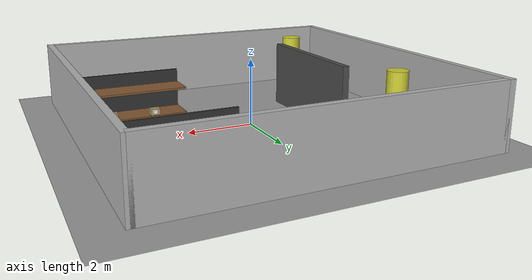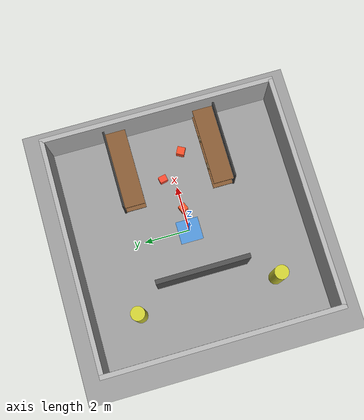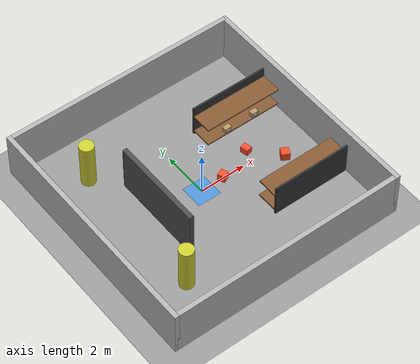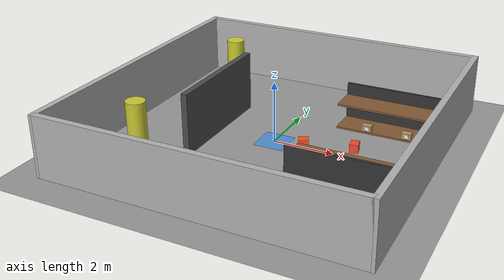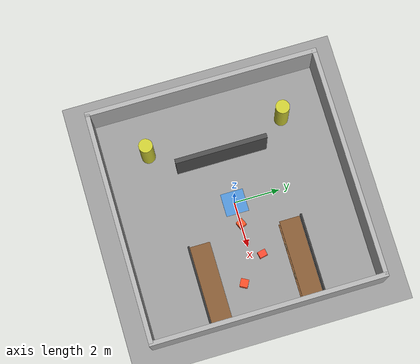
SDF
<?xml version="1.0" ?>
<sdf version="1.8">
  <world name="smart_warehouse">
    <physics name="4ms" type="ignored">
      <max_step_size>0.004</max_step_size>
      <real_time_factor>1.0</real_time_factor>
    </physics>

    <plugin filename="gz-sim-physics-system" name="gz::sim::systems::Physics"/>
    <plugin filename="gz-sim-user-commands-system" name="gz::sim::systems::UserCommands"/>
    <plugin filename="gz-sim-scene-broadcaster-system" name="gz::sim::systems::SceneBroadcaster"/>
    <plugin filename="gz-sim-sensors-system" name="gz::sim::systems::Sensors">
      <render_engine>ogre2</render_engine>
    </plugin>
    <plugin filename="gz-sim-imu-system" name="gz::sim::systems::Imu"/>

    <light type="directional" name="sun">
      <cast_shadows>true</cast_shadows>
      <pose>0 0 12 0 0 0</pose>
      <diffuse>0.95 0.95 0.95 1</diffuse>
      <specular>0.5 0.5 0.5 1</specular>
      <attenuation><range>1000</range><constant>0.75</constant><linear>0.003</linear><quadratic>0.0003</quadratic></attenuation>
      <direction>-0.48 0.12 -0.87</direction>
    </light>

    <model name="ground_plane">
      <static>true</static>
      <link name="link">
        <collision name="collision"><geometry><plane><normal>0 0 1</normal><size>100 100</size></plane></geometry>
          <surface><friction><ode><mu>0.9</mu><mu2>0.7</mu2></ode></friction></surface>
        </collision>
        <visual name="visual">
          <geometry><plane><normal>0 0 1</normal><size>100 100</size></plane></geometry>
          <material>
            <ambient>0.6 0.6 0.6 1</ambient><diffuse>0.6 0.6 0.6 1</diffuse><specular>0.2 0.2 0.2 1</specular>
            <pbr><metal><roughness>0.8</roughness><metallic>0.1</metallic></metal></pbr>
          </material>
        </visual>
      </link>
    </model>

    <model name='wall_north'><static>true</static><pose>0 5 1 0 0 0</pose><link name='link'><collision name='collision'><geometry><box><size>10 0.2 2</size></box></geometry></collision><visual name='visual'><geometry><box><size>10 0.2 2</size></box></geometry><material><ambient>0.7 0.7 0.7 1</ambient><diffuse>0.7 0.7 0.7 1</diffuse></material></visual></link></model>
    <model name='wall_south'><static>true</static><pose>0 -5 1 0 0 0</pose><link name='link'><collision name='collision'><geometry><box><size>10 0.2 2</size></box></geometry></collision><visual name='visual'><geometry><box><size>10 0.2 2</size></box></geometry><material><ambient>0.7 0.7 0.7 1</ambient><diffuse>0.7 0.7 0.7 1</diffuse></material></visual></link></model>
    <model name='wall_east'><static>true</static><pose>5 0 1 0 0 0</pose><link name='link'><collision name='collision'><geometry><box><size>0.2 10.2 2</size></box></geometry></collision><visual name='visual'><geometry><box><size>0.2 10.2 2</size></box></geometry><material><ambient>0.7 0.7 0.7 1</ambient><diffuse>0.7 0.7 0.7 1</diffuse></material></visual></link></model>
    <model name='wall_west'><static>true</static><pose>-5 0 1 0 0 0</pose><link name='link'><collision name='collision'><geometry><box><size>0.2 10.2 2</size></box></geometry></collision><visual name='visual'><geometry><box><size>0.2 10.2 2</size></box></geometry><material><ambient>0.7 0.7 0.7 1</ambient><diffuse>0.7 0.7 0.7 1</diffuse></material></visual></link></model>

    <model name="shelf_1">
      <static>true</static><pose>3.2 2 0 0 0 0</pose>  <link name="link">
        <visual name="back"><pose>0 0.45 0.68 0 0 0</pose><geometry><box><size>3.4 0.08 1.4</size></box></geometry><material><ambient>0.2 0.2 0.2 1</ambient><diffuse>0.2 0.2 0.2 1</diffuse></material></visual>
        <collision name="back"><pose>0 0.45 0.68 0 0 0</pose><geometry><box><size>3.4 0.08 1.4</size></box></geometry></collision>
        <visual name="shelf_bottom"><pose>0 0 0.16 0 0 0</pose><geometry><box><size>3.4 0.95 0.06</size></box></geometry><material><ambient>0.52 0.35 0.2 1</ambient><diffuse>0.52 0.35 0.2 1</diffuse></material></visual>
        <collision name="shelf_bottom"><pose>0 0 0.16 0 0 0</pose><geometry><box><size>3.4 0.95 0.06</size></box></geometry></collision>
        <visual name="shelf_top"><pose>0 0 0.95 0 0 0</pose><geometry><box><size>3.4 0.95 0.06</size></box></geometry><material><ambient>0.52 0.35 0.2 1</ambient><diffuse>0.52 0.35 0.2 1</diffuse></material></visual>
        <collision name="shelf_top"><pose>0 0 0.95 0 0 0</pose><geometry><box><size>3.4 0.95 0.06</size></box></geometry></collision>
      </link>
    </model>

    <model name="shelf_2">
      <static>true</static><pose>3.2 -2 0 0 0 3.14159</pose>
      <link name="link">
        <visual name="back"><pose>0 0.45 0.68 0 0 0</pose><geometry><box><size>3.4 0.08 1.4</size></box></geometry><material><ambient>0.2 0.2 0.2 1</ambient><diffuse>0.2 0.2 0.2 1</diffuse></material></visual>
        <collision name="back"><pose>0 0.45 0.68 0 0 0</pose><geometry><box><size>3.4 0.08 1.4</size></box></geometry></collision>
        <visual name="shelf_bottom"><pose>0 0 0.16 0 0 0</pose><geometry><box><size>3.4 0.95 0.06</size></box></geometry><material><ambient>0.52 0.35 0.2 1</ambient><diffuse>0.52 0.35 0.2 1</diffuse></material></visual>
        <collision name="shelf_bottom"><pose>0 0 0.16 0 0 0</pose><geometry><box><size>3.4 0.95 0.06</size></box></geometry></collision>
        <visual name="shelf_top"><pose>0 0 0.95 0 0 0</pose><geometry><box><size>3.4 0.95 0.06</size></box></geometry><material><ambient>0.52 0.35 0.2 1</ambient><diffuse>0.52 0.35 0.2 1</diffuse></material></visual>
        <collision name="shelf_top"><pose>0 0 0.95 0 0 0</pose><geometry><box><size>3.4 0.95 0.06</size></box></geometry></collision>
      </link>
    </model>

    <model name='divider_wall'><static>true</static><pose>-2 0 1 0 0 0</pose><link name='link'><collision name='collision'><geometry><box><size>0.2 4 2</size></box></geometry></collision><visual name='visual'><geometry><box><size>0.2 4 2</size></box></geometry><material><ambient>0.3 0.3 0.3 1</ambient><diffuse>0.3 0.3 0.3 1</diffuse></material></visual></link></model>
    <model name='pillar_1'><static>true</static><pose>-3 3 1 0 0 0</pose><link name='link'><collision name='collision'><geometry><cylinder><radius>0.3</radius><length>2</length></cylinder></geometry></collision><visual name='visual'><geometry><cylinder><radius>0.3</radius><length>2</length></cylinder></geometry><material><ambient>0.8 0.8 0.2 1</ambient><diffuse>0.8 0.8 0.2 1</diffuse></material></visual></link></model>
    <model name='pillar_2'><static>true</static><pose>-3 -3 1 0 0 0</pose><link name='link'><collision name='collision'><geometry><cylinder><radius>0.3</radius><length>2</length></cylinder></geometry></collision><visual name='visual'><geometry><cylinder><radius>0.3</radius><length>2</length></cylinder></geometry><material><ambient>0.8 0.8 0.2 1</ambient><diffuse>0.8 0.8 0.2 1</diffuse></material></visual></link></model>

    <model name="obstacle_cargo_01">
      <static>false</static>
      <pose>1.0 0.0 0.16 0 0 0.4</pose>
      <link name="link">
        <inertial auto="true"><mass>3.0</mass></inertial>
        <collision name="collision"><geometry><box><size>0.32 0.32 0.32</size></box></geometry></collision>
        <visual name="visual"><geometry><box><size>0.32 0.32 0.32</size></box></geometry><material><ambient>0.85 0.25 0.15 1</ambient><diffuse>0.95 0.32 0.15 1</diffuse></material></visual>
      </link>
    </model>
    <model name="obstacle_cargo_02">
      <static>false</static>
      <pose>2.5 0.5 0.14 0 0 0.2</pose>
      <link name="link">
        <inertial auto="true"><mass>3.0</mass></inertial>
        <collision name="collision"><geometry><box><size>0.28 0.35 0.28</size></box></geometry></collision>
        <visual name="visual"><geometry><box><size>0.28 0.35 0.28</size></box></geometry><material><ambient>0.85 0.22 0.15 1</ambient><diffuse>0.95 0.28 0.18 1</diffuse></material></visual>
      </link>
    </model>
    <model name="obstacle_cargo_03">
      <static>false</static>
      <pose>3.5 -0.6 0.175 0 0 -0.5</pose>
      <link name="link">
        <inertial auto="true"><mass>3.0</mass></inertial>
        <collision name="collision"><geometry><box><size>0.35 0.35 0.35</size></box></geometry></collision>
        <visual name="visual"><geometry><box><size>0.35 0.35 0.35</size></box></geometry><material><ambient>0.85 0.25 0.15 1</ambient><diffuse>0.95 0.3 0.15 1</diffuse></material></visual>
      </link>
    </model>

    <model name="inventory_item_1">
      <static>true</static>
      <pose>2.5 1.65 0.29 0 0 1.5707</pose>
      <link name="link">
        <collision name="col"><geometry><box><size>0.2 0.3 0.2</size></box></geometry></collision>
        <visual name="box_vis"><geometry><box><size>0.2 0.3 0.2</size></box></geometry><material><ambient>0.7 0.6 0.4 1</ambient><diffuse>0.7 0.6 0.4 1</diffuse></material></visual>
        <visual name="qr_bg"><pose>-0.101 0 0 0 0 0</pose><geometry><box><size>0.002 0.15 0.15</size></box></geometry><material><ambient>1 1 1 1</ambient><diffuse>1 1 1 1</diffuse></material></visual>

        <visual name="qr_code">
          <pose>-0.102 0 0 0 0 0</pose>
          <geometry><box><size>0.002 0.1 0.1</size></box></geometry>
          <material>
            <ambient>1 1 1 1</ambient>
            <diffuse>1 1 1 1</diffuse>
            <specular>0.1 0.1 0.1 1</specular>
            <pbr>
              <metal>
                <albedo_map>qr/Item_01.png</albedo_map>
                <roughness>1.0</roughness>
                <metalness>0.0</metalness>
              </metal>
            </pbr>
          </material>
        </visual>
      </link>
    </model>

    <model name="inventory_item_2">
      <static>true</static>
      <pose>3.8 1.65 0.29 0 0 1.5707</pose>
      <link name="link">
        <collision name="col"><geometry><box><size>0.2 0.3 0.2</size></box></geometry></collision>
        <visual name="box_vis"><geometry><box><size>0.2 0.3 0.2</size></box></geometry><material><ambient>0.7 0.6 0.4 1</ambient><diffuse>0.7 0.6 0.4 1</diffuse></material></visual>
        <visual name="qr_bg"><pose>-0.101 0 0 0 0 0</pose><geometry><box><size>0.002 0.15 0.15</size></box></geometry><material><ambient>1 1 1 1</ambient><diffuse>1 1 1 1</diffuse></material></visual>

        <visual name="qr_code">
          <pose>-0.102 0 0 0 0 0</pose>
          <geometry><box><size>0.002 0.1 0.1</size></box></geometry>
          <material>
            <ambient>1 1 1 1</ambient>
            <diffuse>1 1 1 1</diffuse>
            <specular>0.1 0.1 0.1 1</specular>
            <pbr>
              <metal>
                <albedo_map>qr/Item_02.png</albedo_map>
                <roughness>1.0</roughness>
                <metalness>0.0</metalness>
              </metal>
            </pbr>
          </material>
        </visual>
      </link>
    </model>

    <model name="inventory_item_3">
      <static>true</static>
      <pose>2.5 -1.65 0.29 0 0 -1.5707</pose>
      <link name="link">
        <collision name="col"><geometry><box><size>0.2 0.3 0.2</size></box></geometry></collision>
        <visual name="box_vis"><geometry><box><size>0.2 0.3 0.2</size></box></geometry><material><ambient>0.7 0.6 0.4 1</ambient><diffuse>0.7 0.6 0.4 1</diffuse></material></visual>
        <visual name="qr_bg"><pose>-0.101 0 0 0 0 0</pose><geometry><box><size>0.002 0.15 0.15</size></box></geometry><material><ambient>1 1 1 1</ambient><diffuse>1 1 1 1</diffuse></material></visual>

        <visual name="qr_code">
          <pose>-0.102 0 0 0 0 0</pose>
          <geometry><box><size>0.002 0.1 0.1</size></box></geometry>
          <material>
            <ambient>1 1 1 1</ambient>
            <diffuse>1 1 1 1</diffuse>
            <specular>0.1 0.1 0.1 1</specular>
            <pbr>
              <metal>
                <albedo_map>qr/Item_03.png</albedo_map>
                <roughness>1.0</roughness>
                <metalness>0.0</metalness>
              </metal>
            </pbr>
          </material>
        </visual>
      </link>
    </model>

    <model name="inventory_item_4">
      <static>true</static>
      <pose>3.8 -1.65 0.29 0 0 -1.5707</pose>
      <link name="link">
        <collision name="col"><geometry><box><size>0.2 0.3 0.2</size></box></geometry></collision>
        <visual name="box_vis"><geometry><box><size>0.2 0.3 0.2</size></box></geometry><material><ambient>0.7 0.6 0.4 1</ambient><diffuse>0.7 0.6 0.4 1</diffuse></material></visual>
        <visual name="qr_bg"><pose>-0.101 0 0 0 0 0</pose><geometry><box><size>0.002 0.15 0.15</size></box></geometry><material><ambient>1 1 1 1</ambient><diffuse>1 1 1 1</diffuse></material></visual>

        <visual name="qr_code">
          <pose>-0.102 0 0 0 0 0</pose>
          <geometry><box><size>0.002 0.1 0.1</size></box></geometry>
          <material>
            <ambient>1 1 1 1</ambient>
            <diffuse>1 1 1 1</diffuse>
            <specular>0.1 0.1 0.1 1</specular>
            <pbr>
              <metal>
                <albedo_map>qr/Item_04.png</albedo_map>
                <roughness>1.0</roughness>
                <metalness>0.0</metalness>
              </metal>
            </pbr>
          </material>
        </visual>
      </link>
    </model>
    <model name="charging_dock">
      <static>true</static>
      <pose>0.0 0.0 0.005 0 0 0</pose>
      <link name="link">
        <visual name="visual">
          <geometry><box><size>1.0 1.0 0.01</size></box></geometry>
          <material><ambient>0.2 0.6 1.0 0.65</ambient><diffuse>0.2 0.6 1.0 0.65</diffuse></material>
        </visual>
      </link>
    </model>

  </world>
</sdf>
